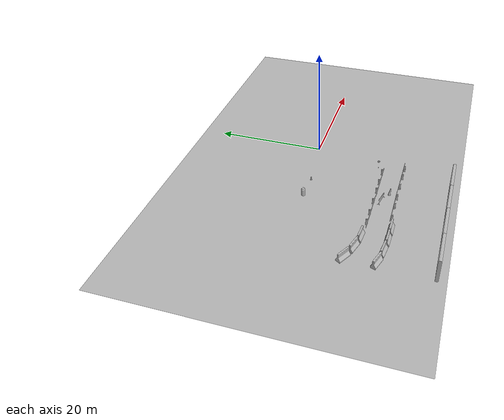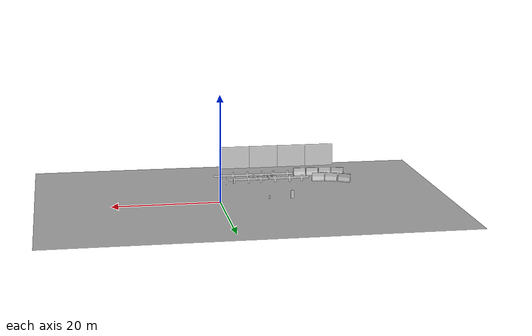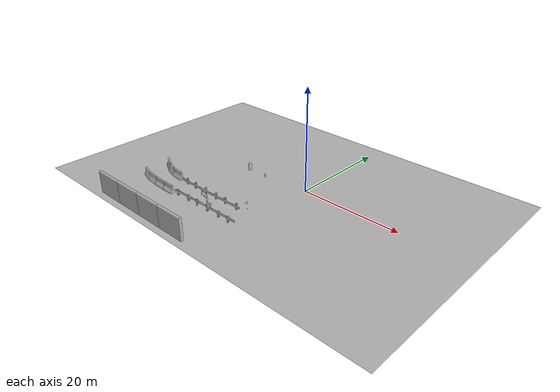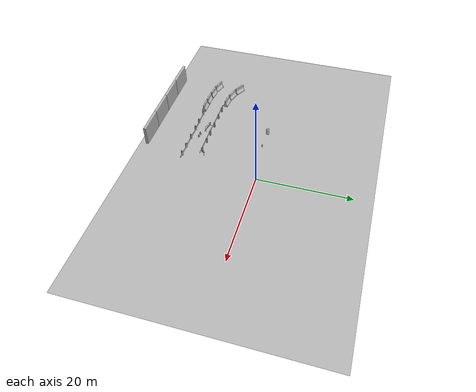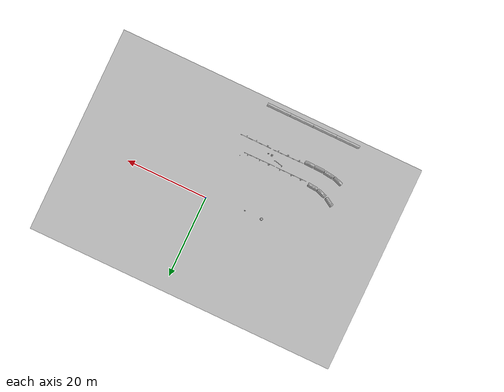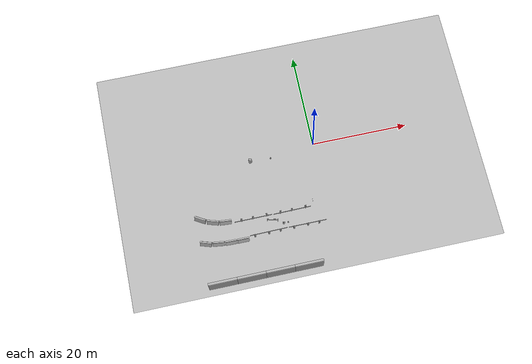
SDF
<sdf version="1.7">
 <world name="default">
  <model name="aws_robomaker_racetrack_CrashworthBucket_01_02">
   <frame name="aws_CrashworthBucket_01::__model__" attached_to="aws_CrashworthBucket_01::body">
    <pose relative_to="__model__">0 0 0 0 -0 0</pose>
   </frame>
   <link name="aws_CrashworthBucket_01::body">
    <pose relative_to="aws_CrashworthBucket_01::__model__">0 0 0 0 -0 0</pose>
    <inertial>
     <mass>5</mass>
     <inertia><ixx>1</ixx><ixy>0</ixy><ixz>0</ixz><iyy>1</iyy><iyz>0</iyz><izz>1</izz></inertia>
    </inertial>
    <visual name="visual">
     <geometry>
      <mesh>
       <uri>file://models/aws_robomaker_racetrack_CrashworthBucket_01/meshes/aws_CrashworthBucket_01_visual.DAE</uri>
      </mesh>
     </geometry>
     <material><shader type="pixel"><normal_map>__default__</normal_map></shader></material>
     <meta><layer>0</layer></meta>
    </visual>
    <collision name="collision_0">
     <geometry>
      <mesh>
       <uri>file://models/aws_robomaker_racetrack_CrashworthBucket_01/meshes/aws_CrashworthBucket_01_collision.DAE</uri>
       <scale>1 1 1</scale>
      </mesh>
     </geometry>
     <surface>
      <friction>
       <ode><mu>1</mu><mu2>1</mu2><fdir1>0 0 0</fdir1><slip1>0</slip1><slip2>0</slip2></ode>
       <torsional>
        <coefficient>1</coefficient>
        <patch_radius>0</patch_radius>
        <surface_radius>0</surface_radius>
        <use_patch_radius>1</use_patch_radius>
        <ode><slip>0</slip></ode>
       </torsional>
      </friction>
      <bounce><restitution_coefficient>0</restitution_coefficient><threshold>1e+06</threshold></bounce>
      <contact>
       <collide_without_contact>0</collide_without_contact>
       <collide_without_contact_bitmask>1</collide_without_contact_bitmask>
       <collide_bitmask>1</collide_bitmask>
       <ode>
        <soft_cfm>0</soft_cfm>
        <soft_erp>0.2</soft_erp>
        <kp>1e+13</kp>
        <kd>1</kd>
        <max_vel>0.01</max_vel>
        <min_depth>0</min_depth>
       </ode>
       <bullet>
        <split_impulse>1</split_impulse>
        <split_impulse_penetration_threshold>-0.01</split_impulse_penetration_threshold>
        <soft_cfm>0</soft_cfm>
        <soft_erp>0.2</soft_erp>
        <kp>1e+13</kp>
        <kd>1</kd>
       </bullet>
      </contact>
     </surface>
    </collision>
   </link>
   <static>1</static>
   <pose>-13.6708 -0.983538 0.054 0 -0 0</pose>
  </model>
  <model name="aws_robomaker_racetrack_Fence_01_04">
   <frame name="aws_Fence_01::__model__" attached_to="aws_Fence_01::body">
    <pose relative_to="__model__">0 0 0 0 -0 0</pose>
   </frame>
   <link name="aws_Fence_01::body">
    <pose relative_to="aws_Fence_01::__model__">0 0 0 0 -0 0</pose>
    <inertial>
     <mass>5</mass>
     <inertia><ixx>1</ixx><ixy>0</ixy><ixz>0</ixz><iyy>1</iyy><iyz>0</iyz><izz>1</izz></inertia>
    </inertial>
    <visual name="visual">
     <geometry>
      <mesh><uri>file://models/aws_robomaker_racetrack_Fence_01/meshes/aws_Fence_01_visual.DAE</uri></mesh>
     </geometry>
     <material><shader type="pixel"><normal_map>__default__</normal_map></shader></material>
     <meta><layer>0</layer></meta>
    </visual>
    <collision name="collision_0">
     <geometry>
      <mesh>
       <uri>file://models/aws_robomaker_racetrack_Fence_01/meshes/aws_Fence_01_collision.DAE</uri>
       <scale>1 1 1</scale>
      </mesh>
     </geometry>
     <surface>
      <friction>
       <ode><mu>1</mu><mu2>1</mu2><fdir1>0 0 0</fdir1><slip1>0</slip1><slip2>0</slip2></ode>
       <torsional>
        <coefficient>1</coefficient>
        <patch_radius>0</patch_radius>
        <surface_radius>0</surface_radius>
        <use_patch_radius>1</use_patch_radius>
        <ode><slip>0</slip></ode>
       </torsional>
      </friction>
      <bounce><restitution_coefficient>0</restitution_coefficient><threshold>1e+06</threshold></bounce>
      <contact>
       <collide_without_contact>0</collide_without_contact>
       <collide_without_contact_bitmask>1</collide_without_contact_bitmask>
       <collide_bitmask>1</collide_bitmask>
       <ode>
        <soft_cfm>0</soft_cfm>
        <soft_erp>0.2</soft_erp>
        <kp>1e+13</kp>
        <kd>1</kd>
        <max_vel>0.01</max_vel>
        <min_depth>0</min_depth>
       </ode>
       <bullet>
        <split_impulse>1</split_impulse>
        <split_impulse_penetration_threshold>-0.01</split_impulse_penetration_threshold>
        <soft_cfm>0</soft_cfm>
        <soft_erp>0.2</soft_erp>
        <kp>1e+13</kp>
        <kd>1</kd>
       </bullet>
      </contact>
     </surface>
    </collision>
   </link>
   <static>1</static>
   <pose>-12.9904 -16.8572 0.054 0 0 -1.55861</pose>
  </model>
  <model name="aws_robomaker_racetrack_Fence_01_05">
   <frame name="aws_Fence_01::__model__" attached_to="aws_Fence_01::body">
    <pose relative_to="__model__">0 0 0 0 -0 0</pose>
   </frame>
   <link name="aws_Fence_01::body">
    <pose relative_to="aws_Fence_01::__model__">0 0 0 0 -0 0</pose>
    <inertial>
     <mass>5</mass>
     <inertia><ixx>1</ixx><ixy>0</ixy><ixz>0</ixz><iyy>1</iyy><iyz>0</iyz><izz>1</izz></inertia>
    </inertial>
    <visual name="visual">
     <geometry>
      <mesh><uri>file://models/aws_robomaker_racetrack_Fence_01/meshes/aws_Fence_01_visual.DAE</uri></mesh>
     </geometry>
     <material><shader type="pixel"><normal_map>__default__</normal_map></shader></material>
     <meta><layer>0</layer></meta>
    </visual>
    <collision name="collision_0">
     <geometry>
      <mesh>
       <uri>file://models/aws_robomaker_racetrack_Fence_01/meshes/aws_Fence_01_collision.DAE</uri>
       <scale>1 1 1</scale>
      </mesh>
     </geometry>
     <surface>
      <friction>
       <ode><mu>1</mu><mu2>1</mu2><fdir1>0 0 0</fdir1><slip1>0</slip1><slip2>0</slip2></ode>
       <torsional>
        <coefficient>1</coefficient>
        <patch_radius>0</patch_radius>
        <surface_radius>0</surface_radius>
        <use_patch_radius>1</use_patch_radius>
        <ode><slip>0</slip></ode>
       </torsional>
      </friction>
      <bounce><restitution_coefficient>0</restitution_coefficient><threshold>1e+06</threshold></bounce>
      <contact>
       <collide_without_contact>0</collide_without_contact>
       <collide_without_contact_bitmask>1</collide_without_contact_bitmask>
       <collide_bitmask>1</collide_bitmask>
       <ode>
        <soft_cfm>0</soft_cfm>
        <soft_erp>0.2</soft_erp>
        <kp>1e+13</kp>
        <kd>1</kd>
        <max_vel>0.01</max_vel>
        <min_depth>0</min_depth>
       </ode>
       <bullet>
        <split_impulse>1</split_impulse>
        <split_impulse_penetration_threshold>-0.01</split_impulse_penetration_threshold>
        <soft_cfm>0</soft_cfm>
        <soft_erp>0.2</soft_erp>
        <kp>1e+13</kp>
        <kd>1</kd>
       </bullet>
      </contact>
     </surface>
    </collision>
   </link>
   <static>1</static>
   <pose>-4.88088 -16.8495 0.054 0 0 -1.57272</pose>
  </model>
  <model name="aws_robomaker_racetrack_Fence_01_08">
   <frame name="aws_Fence_01::__model__" attached_to="aws_Fence_01::body">
    <pose relative_to="__model__">0 0 0 0 -0 0</pose>
   </frame>
   <link name="aws_Fence_01::body">
    <pose relative_to="aws_Fence_01::__model__">0 0 0 0 -0 0</pose>
    <inertial>
     <mass>5</mass>
     <inertia><ixx>1</ixx><ixy>0</ixy><ixz>0</ixz><iyy>1</iyy><iyz>0</iyz><izz>1</izz></inertia>
    </inertial>
    <visual name="visual">
     <geometry>
      <mesh><uri>file://models/aws_robomaker_racetrack_Fence_01/meshes/aws_Fence_01_visual.DAE</uri></mesh>
     </geometry>
     <material><shader type="pixel"><normal_map>__default__</normal_map></shader></material>
     <meta><layer>0</layer></meta>
    </visual>
    <collision name="collision_0">
     <geometry>
      <mesh>
       <uri>file://models/aws_robomaker_racetrack_Fence_01/meshes/aws_Fence_01_collision.DAE</uri>
       <scale>1 1 1</scale>
      </mesh>
     </geometry>
     <surface>
      <friction>
       <ode><mu>1</mu><mu2>1</mu2><fdir1>0 0 0</fdir1><slip1>0</slip1><slip2>0</slip2></ode>
       <torsional>
        <coefficient>1</coefficient>
        <patch_radius>0</patch_radius>
        <surface_radius>0</surface_radius>
        <use_patch_radius>1</use_patch_radius>
        <ode><slip>0</slip></ode>
       </torsional>
      </friction>
      <bounce><restitution_coefficient>0</restitution_coefficient><threshold>1e+06</threshold></bounce>
      <contact>
       <collide_without_contact>0</collide_without_contact>
       <collide_without_contact_bitmask>1</collide_without_contact_bitmask>
       <collide_bitmask>1</collide_bitmask>
       <ode>
        <soft_cfm>0</soft_cfm>
        <soft_erp>0.2</soft_erp>
        <kp>1e+13</kp>
        <kd>1</kd>
        <max_vel>0.01</max_vel>
        <min_depth>0</min_depth>
       </ode>
       <bullet>
        <split_impulse>1</split_impulse>
        <split_impulse_penetration_threshold>-0.01</split_impulse_penetration_threshold>
        <soft_cfm>0</soft_cfm>
        <soft_erp>0.2</soft_erp>
        <kp>1e+13</kp>
        <kd>1</kd>
       </bullet>
      </contact>
     </surface>
    </collision>
   </link>
   <static>1</static>
   <pose>-15.529 -13.1346 0.054 0 -0 1.57158</pose>
  </model>
  <model name="aws_robomaker_racetrack_Fence_01_09">
   <frame name="aws_Fence_01::__model__" attached_to="aws_Fence_01::body">
    <pose relative_to="__model__">0 0 0 0 -0 0</pose>
   </frame>
   <link name="aws_Fence_01::body">
    <pose relative_to="aws_Fence_01::__model__">0 0 0 0 -0 0</pose>
    <inertial>
     <mass>5</mass>
     <inertia><ixx>1</ixx><ixy>0</ixy><ixz>0</ixz><iyy>1</iyy><iyz>0</iyz><izz>1</izz></inertia>
    </inertial>
    <visual name="visual">
     <geometry>
      <mesh><uri>file://models/aws_robomaker_racetrack_Fence_01/meshes/aws_Fence_01_visual.DAE</uri></mesh>
     </geometry>
     <material><shader type="pixel"><normal_map>__default__</normal_map></shader></material>
     <meta><layer>0</layer></meta>
    </visual>
    <collision name="collision_0">
     <geometry>
      <mesh>
       <uri>file://models/aws_robomaker_racetrack_Fence_01/meshes/aws_Fence_01_collision.DAE</uri>
       <scale>1 1 1</scale>
      </mesh>
     </geometry>
     <surface>
      <friction>
       <ode><mu>1</mu><mu2>1</mu2><fdir1>0 0 0</fdir1><slip1>0</slip1><slip2>0</slip2></ode>
       <torsional>
        <coefficient>1</coefficient>
        <patch_radius>0</patch_radius>
        <surface_radius>0</surface_radius>
        <use_patch_radius>1</use_patch_radius>
        <ode><slip>0</slip></ode>
       </torsional>
      </friction>
      <bounce><restitution_coefficient>0</restitution_coefficient><threshold>1e+06</threshold></bounce>
      <contact>
       <collide_without_contact>0</collide_without_contact>
       <collide_without_contact_bitmask>1</collide_without_contact_bitmask>
       <collide_bitmask>1</collide_bitmask>
       <ode>
        <soft_cfm>0</soft_cfm>
        <soft_erp>0.2</soft_erp>
        <kp>1e+13</kp>
        <kd>1</kd>
        <max_vel>0.01</max_vel>
        <min_depth>0</min_depth>
       </ode>
       <bullet>
        <split_impulse>1</split_impulse>
        <split_impulse_penetration_threshold>-0.01</split_impulse_penetration_threshold>
        <soft_cfm>0</soft_cfm>
        <soft_erp>0.2</soft_erp>
        <kp>1e+13</kp>
        <kd>1</kd>
       </bullet>
      </contact>
     </surface>
    </collision>
   </link>
   <static>1</static>
   <pose>-7.39105 -13.1346 0.054651 0 -0 1.5804</pose>
  </model>
  <model name="aws_robomaker_racetrack_Fence_02_04">
   <frame name="aws_Fence_02::__model__" attached_to="aws_Fence_02::body">
    <pose relative_to="__model__">0 0 0 0 -0 0</pose>
   </frame>
   <link name="aws_Fence_02::body">
    <pose relative_to="aws_Fence_02::__model__">0 0 0 0 -0 0</pose>
    <inertial>
     <mass>5</mass>
     <inertia><ixx>9.6</ixx><ixy>0</ixy><ixz>0</ixz><iyy>8.2</iyy><iyz>0</iyz><izz>2.1</izz></inertia>
    </inertial>
    <visual name="visual">
     <geometry>
      <mesh><uri>file://models/aws_robomaker_racetrack_Fence_02/meshes/aws_Fence_02_visual.DAE</uri></mesh>
     </geometry>
     <material><shader type="pixel"><normal_map>__default__</normal_map></shader></material>
     <meta><layer>0</layer></meta>
    </visual>
    <collision name="collision_0">
     <geometry>
      <mesh>
       <uri>file://models/aws_robomaker_racetrack_Fence_02/meshes/aws_Fence_02_collision.DAE</uri>
       <scale>1 1 1</scale>
      </mesh>
     </geometry>
     <surface>
      <friction>
       <ode><mu>1</mu><mu2>1</mu2><fdir1>0 0 0</fdir1><slip1>0</slip1><slip2>0</slip2></ode>
       <torsional>
        <coefficient>1</coefficient>
        <patch_radius>0</patch_radius>
        <surface_radius>0</surface_radius>
        <use_patch_radius>1</use_patch_radius>
        <ode><slip>0</slip></ode>
       </torsional>
      </friction>
      <bounce><restitution_coefficient>0</restitution_coefficient><threshold>1e+06</threshold></bounce>
      <contact>
       <collide_without_contact>0</collide_without_contact>
       <collide_without_contact_bitmask>1</collide_without_contact_bitmask>
       <collide_bitmask>1</collide_bitmask>
      </contact>
     </surface>
    </collision>
   </link>
   <static>1</static>
   <pose>-11.6951 -14.3074 0.054 0 0 -1.78988</pose>
  </model>
  <model name="aws_robomaker_racetrack_StonePier_01_00">
   <frame name="aws_StonePier_01::__model__" attached_to="aws_StonePier_01::body">
    <pose relative_to="__model__">0 0 0 0 -0 0</pose>
   </frame>
   <link name="aws_StonePier_01::body">
    <pose relative_to="aws_StonePier_01::__model__">0 0 0 0 -0 0</pose>
    <inertial>
     <mass>10</mass>
     <inertia><ixx>0</ixx><ixy>0</ixy><ixz>0</ixz><iyy>0</iyy><iyz>0</iyz><izz>0</izz></inertia>
    </inertial>
    <visual name="visual">
     <geometry>
      <mesh><uri>file://models/aws_robomaker_racetrack_StonePier_01/meshes/aws_StonePier_01_visual.DAE</uri></mesh>
     </geometry>
     <material><shader type="pixel"><normal_map>__default__</normal_map></shader></material>
     <meta><layer>0</layer></meta>
    </visual>
    <collision name="collision_0">
     <geometry>
      <mesh>
       <uri>file://models/aws_robomaker_racetrack_StonePier_01/meshes/aws_StonePier_01_collision.DAE</uri>
       <scale>1 1 1</scale>
      </mesh>
     </geometry>
     <surface>
      <friction>
       <ode><mu>1</mu><mu2>1</mu2><fdir1>0 0 0</fdir1><slip1>0</slip1><slip2>0</slip2></ode>
       <torsional>
        <coefficient>1</coefficient>
        <patch_radius>0</patch_radius>
        <surface_radius>0</surface_radius>
        <use_patch_radius>1</use_patch_radius>
        <ode><slip>0</slip></ode>
       </torsional>
      </friction>
      <bounce><restitution_coefficient>0</restitution_coefficient><threshold>1e+06</threshold></bounce>
      <contact>
       <collide_without_contact>0</collide_without_contact>
       <collide_without_contact_bitmask>1</collide_without_contact_bitmask>
       <collide_bitmask>1</collide_bitmask>
       <ode>
        <soft_cfm>0</soft_cfm>
        <soft_erp>0.2</soft_erp>
        <kp>1e+13</kp>
        <kd>1</kd>
        <max_vel>0.01</max_vel>
        <min_depth>0</min_depth>
       </ode>
       <bullet>
        <split_impulse>1</split_impulse>
        <split_impulse_penetration_threshold>-0.01</split_impulse_penetration_threshold>
        <soft_cfm>0</soft_cfm>
        <soft_erp>0.2</soft_erp>
        <kp>1e+13</kp>
        <kd>1</kd>
       </bullet>
      </contact>
     </surface>
    </collision>
   </link>
   <static>1</static>
   <pose>-21.1732 -12.7799 0.054 0 0 -0.086667</pose>
  </model>
  <model name="aws_robomaker_racetrack_StonePier_01_01">
   <frame name="aws_StonePier_01::__model__" attached_to="aws_StonePier_01::body">
    <pose relative_to="__model__">0 0 0 0 -0 0</pose>
   </frame>
   <link name="aws_StonePier_01::body">
    <pose relative_to="aws_StonePier_01::__model__">0 0 0 0 -0 0</pose>
    <inertial>
     <mass>10</mass>
     <inertia><ixx>0</ixx><ixy>0</ixy><ixz>0</ixz><iyy>0</iyy><iyz>0</iyz><izz>0</izz></inertia>
    </inertial>
    <visual name="visual">
     <geometry>
      <mesh><uri>file://models/aws_robomaker_racetrack_StonePier_01/meshes/aws_StonePier_01_visual.DAE</uri></mesh>
     </geometry>
     <material><shader type="pixel"><normal_map>__default__</normal_map></shader></material>
     <meta><layer>0</layer></meta>
    </visual>
    <collision name="collision_0">
     <geometry>
      <mesh>
       <uri>file://models/aws_robomaker_racetrack_StonePier_01/meshes/aws_StonePier_01_collision.DAE</uri>
       <scale>1 1 1</scale>
      </mesh>
     </geometry>
     <surface>
      <friction>
       <ode><mu>1</mu><mu2>1</mu2><fdir1>0 0 0</fdir1><slip1>0</slip1><slip2>0</slip2></ode>
       <torsional>
        <coefficient>1</coefficient>
        <patch_radius>0</patch_radius>
        <surface_radius>0</surface_radius>
        <use_patch_radius>1</use_patch_radius>
        <ode><slip>0</slip></ode>
       </torsional>
      </friction>
      <bounce><restitution_coefficient>0</restitution_coefficient><threshold>1e+06</threshold></bounce>
      <contact>
       <collide_without_contact>0</collide_without_contact>
       <collide_without_contact_bitmask>1</collide_without_contact_bitmask>
       <collide_bitmask>1</collide_bitmask>
       <ode>
        <soft_cfm>0</soft_cfm>
        <soft_erp>0.2</soft_erp>
        <kp>1e+13</kp>
        <kd>1</kd>
        <max_vel>0.01</max_vel>
        <min_depth>0</min_depth>
       </ode>
       <bullet>
        <split_impulse>1</split_impulse>
        <split_impulse_penetration_threshold>-0.01</split_impulse_penetration_threshold>
        <soft_cfm>0</soft_cfm>
        <soft_erp>0.2</soft_erp>
        <kp>1e+13</kp>
        <kd>1</kd>
       </bullet>
      </contact>
     </surface>
    </collision>
   </link>
   <static>1</static>
   <pose>-23.6727 -12.2854 0.054 0 0 -0.301631</pose>
  </model>
  <model name="aws_robomaker_racetrack_StonePier_01_40">
   <frame name="aws_StonePier_01::__model__" attached_to="aws_StonePier_01::body">
    <pose relative_to="__model__">0 0 0 0 -0 0</pose>
   </frame>
   <link name="aws_StonePier_01::body">
    <pose relative_to="aws_StonePier_01::__model__">0 0 0 0 -0 0</pose>
    <inertial>
     <mass>10</mass>
     <inertia><ixx>0</ixx><ixy>0</ixy><ixz>0</ixz><iyy>0</iyy><iyz>0</iyz><izz>0</izz></inertia>
    </inertial>
    <visual name="visual">
     <geometry>
      <mesh><uri>file://models/aws_robomaker_racetrack_StonePier_01/meshes/aws_StonePier_01_visual.DAE</uri></mesh>
     </geometry>
     <material><shader type="pixel"><normal_map>__default__</normal_map></shader></material>
     <meta><layer>0</layer></meta>
    </visual>
    <collision name="collision_0">
     <geometry>
      <mesh>
       <uri>file://models/aws_robomaker_racetrack_StonePier_01/meshes/aws_StonePier_01_collision.DAE</uri>
       <scale>1 1 1</scale>
      </mesh>
     </geometry>
     <surface>
      <friction>
       <ode><mu>1</mu><mu2>1</mu2><fdir1>0 0 0</fdir1><slip1>0</slip1><slip2>0</slip2></ode>
       <torsional>
        <coefficient>1</coefficient>
        <patch_radius>0</patch_radius>
        <surface_radius>0</surface_radius>
        <use_patch_radius>1</use_patch_radius>
        <ode><slip>0</slip></ode>
       </torsional>
      </friction>
      <bounce><restitution_coefficient>0</restitution_coefficient><threshold>1e+06</threshold></bounce>
      <contact>
       <collide_without_contact>0</collide_without_contact>
       <collide_without_contact_bitmask>1</collide_without_contact_bitmask>
       <collide_bitmask>1</collide_bitmask>
       <ode>
        <soft_cfm>0</soft_cfm>
        <soft_erp>0.2</soft_erp>
        <kp>1e+13</kp>
        <kd>1</kd>
        <max_vel>0.01</max_vel>
        <min_depth>0</min_depth>
       </ode>
       <bullet>
        <split_impulse>1</split_impulse>
        <split_impulse_penetration_threshold>-0.01</split_impulse_penetration_threshold>
        <soft_cfm>0</soft_cfm>
        <soft_erp>0.2</soft_erp>
        <kp>1e+13</kp>
        <kd>1</kd>
       </bullet>
      </contact>
     </surface>
    </collision>
   </link>
   <static>1</static>
   <pose>-18.3212 -17.1986 0.054 0 0 -0.000165</pose>
  </model>
  <model name="aws_robomaker_racetrack_StonePier_01_41">
   <frame name="aws_StonePier_01::__model__" attached_to="aws_StonePier_01::body">
    <pose relative_to="__model__">0 0 0 0 -0 0</pose>
   </frame>
   <link name="aws_StonePier_01::body">
    <pose relative_to="aws_StonePier_01::__model__">0 0 0 0 -0 0</pose>
    <inertial>
     <mass>10</mass>
     <inertia><ixx>0</ixx><ixy>0</ixy><ixz>0</ixz><iyy>0</iyy><iyz>0</iyz><izz>0</izz></inertia>
    </inertial>
    <visual name="visual">
     <geometry>
      <mesh><uri>file://models/aws_robomaker_racetrack_StonePier_01/meshes/aws_StonePier_01_visual.DAE</uri></mesh>
     </geometry>
     <material><shader type="pixel"><normal_map>__default__</normal_map></shader></material>
     <meta><layer>0</layer></meta>
    </visual>
    <collision name="collision_0">
     <geometry>
      <mesh>
       <uri>file://models/aws_robomaker_racetrack_StonePier_01/meshes/aws_StonePier_01_collision.DAE</uri>
       <scale>1 1 1</scale>
      </mesh>
     </geometry>
     <surface>
      <friction>
       <ode><mu>1</mu><mu2>1</mu2><fdir1>0 0 0</fdir1><slip1>0</slip1><slip2>0</slip2></ode>
       <torsional>
        <coefficient>1</coefficient>
        <patch_radius>0</patch_radius>
        <surface_radius>0</surface_radius>
        <use_patch_radius>1</use_patch_radius>
        <ode><slip>0</slip></ode>
       </torsional>
      </friction>
      <bounce><restitution_coefficient>0</restitution_coefficient><threshold>1e+06</threshold></bounce>
      <contact>
       <collide_without_contact>0</collide_without_contact>
       <collide_without_contact_bitmask>1</collide_without_contact_bitmask>
       <collide_bitmask>1</collide_bitmask>
       <ode>
        <soft_cfm>0</soft_cfm>
        <soft_erp>0.2</soft_erp>
        <kp>1e+13</kp>
        <kd>1</kd>
        <max_vel>0.01</max_vel>
        <min_depth>0</min_depth>
       </ode>
       <bullet>
        <split_impulse>1</split_impulse>
        <split_impulse_penetration_threshold>-0.01</split_impulse_penetration_threshold>
        <soft_cfm>0</soft_cfm>
        <soft_erp>0.2</soft_erp>
        <kp>1e+13</kp>
        <kd>1</kd>
       </bullet>
      </contact>
     </surface>
    </collision>
   </link>
   <static>1</static>
   <pose>-26.1157 -11.2238 0.054 0 0 -0.528829</pose>
  </model>
  <model name="aws_robomaker_racetrack_StonePier_01_68">
   <frame name="aws_StonePier_01::__model__" attached_to="aws_StonePier_01::body">
    <pose relative_to="__model__">0 0 0 0 -0 0</pose>
   </frame>
   <link name="aws_StonePier_01::body">
    <pose relative_to="aws_StonePier_01::__model__">0 0 0 0 -0 0</pose>
    <inertial>
     <mass>10</mass>
     <inertia><ixx>0</ixx><ixy>0</ixy><ixz>0</ixz><iyy>0</iyy><iyz>0</iyz><izz>0</izz></inertia>
    </inertial>
    <visual name="visual">
     <geometry>
      <mesh><uri>file://models/aws_robomaker_racetrack_StonePier_01/meshes/aws_StonePier_01_visual.DAE</uri></mesh>
     </geometry>
     <material><shader type="pixel"><normal_map>__default__</normal_map></shader></material>
     <meta><layer>0</layer></meta>
    </visual>
    <collision name="collision_0">
     <geometry>
      <mesh>
       <uri>file://models/aws_robomaker_racetrack_StonePier_01/meshes/aws_StonePier_01_collision.DAE</uri>
       <scale>1 1 1</scale>
      </mesh>
     </geometry>
     <surface>
      <friction>
       <ode><mu>1</mu><mu2>1</mu2><fdir1>0 0 0</fdir1><slip1>0</slip1><slip2>0</slip2></ode>
       <torsional>
        <coefficient>1</coefficient>
        <patch_radius>0</patch_radius>
        <surface_radius>0</surface_radius>
        <use_patch_radius>1</use_patch_radius>
        <ode><slip>0</slip></ode>
       </torsional>
      </friction>
      <bounce><restitution_coefficient>0</restitution_coefficient><threshold>1e+06</threshold></bounce>
      <contact>
       <collide_without_contact>0</collide_without_contact>
       <collide_without_contact_bitmask>1</collide_without_contact_bitmask>
       <collide_bitmask>1</collide_bitmask>
       <ode>
        <soft_cfm>0</soft_cfm>
        <soft_erp>0.2</soft_erp>
        <kp>1e+13</kp>
        <kd>1</kd>
        <max_vel>0.01</max_vel>
        <min_depth>0</min_depth>
       </ode>
       <bullet>
        <split_impulse>1</split_impulse>
        <split_impulse_penetration_threshold>-0.01</split_impulse_penetration_threshold>
        <soft_cfm>0</soft_cfm>
        <soft_erp>0.2</soft_erp>
        <kp>1e+13</kp>
        <kd>1</kd>
       </bullet>
      </contact>
     </surface>
    </collision>
   </link>
   <static>1</static>
   <pose>-20.8526 -17.1365 0.054 -0 0.00036 -0.016586</pose>
  </model>
  <model name="aws_robomaker_racetrack_StonePier_01_69">
   <frame name="aws_StonePier_01::__model__" attached_to="aws_StonePier_01::body">
    <pose relative_to="__model__">0 0 0 0 -0 0</pose>
   </frame>
   <link name="aws_StonePier_01::body">
    <pose relative_to="aws_StonePier_01::__model__">0 0 0 0 -0 0</pose>
    <inertial>
     <mass>10</mass>
     <inertia><ixx>0</ixx><ixy>0</ixy><ixz>0</ixz><iyy>0</iyy><iyz>0</iyz><izz>0</izz></inertia>
    </inertial>
    <visual name="visual">
     <geometry>
      <mesh><uri>file://models/aws_robomaker_racetrack_StonePier_01/meshes/aws_StonePier_01_visual.DAE</uri></mesh>
     </geometry>
     <material><shader type="pixel"><normal_map>__default__</normal_map></shader></material>
     <meta><layer>0</layer></meta>
    </visual>
    <collision name="collision_0">
     <geometry>
      <mesh>
       <uri>file://models/aws_robomaker_racetrack_StonePier_01/meshes/aws_StonePier_01_collision.DAE</uri>
       <scale>1 1 1</scale>
      </mesh>
     </geometry>
     <surface>
      <friction>
       <ode><mu>1</mu><mu2>1</mu2><fdir1>0 0 0</fdir1><slip1>0</slip1><slip2>0</slip2></ode>
       <torsional>
        <coefficient>1</coefficient>
        <patch_radius>0</patch_radius>
        <surface_radius>0</surface_radius>
        <use_patch_radius>1</use_patch_radius>
        <ode><slip>0</slip></ode>
       </torsional>
      </friction>
      <bounce><restitution_coefficient>0</restitution_coefficient><threshold>1e+06</threshold></bounce>
      <contact>
       <collide_without_contact>0</collide_without_contact>
       <collide_without_contact_bitmask>1</collide_without_contact_bitmask>
       <collide_bitmask>1</collide_bitmask>
       <ode>
        <soft_cfm>0</soft_cfm>
        <soft_erp>0.2</soft_erp>
        <kp>1e+13</kp>
        <kd>1</kd>
        <max_vel>0.01</max_vel>
        <min_depth>0</min_depth>
       </ode>
       <bullet>
        <split_impulse>1</split_impulse>
        <split_impulse_penetration_threshold>-0.01</split_impulse_penetration_threshold>
        <soft_cfm>0</soft_cfm>
        <soft_erp>0.2</soft_erp>
        <kp>1e+13</kp>
        <kd>1</kd>
       </bullet>
      </contact>
     </surface>
    </collision>
   </link>
   <static>1</static>
   <pose>-23.3756 -16.9024 0.054 0 0 -0.119704</pose>
  </model>
  <model name="aws_robomaker_racetrack_StonePier_01_70">
   <frame name="aws_StonePier_01::__model__" attached_to="aws_StonePier_01::body">
    <pose relative_to="__model__">0 0 0 0 -0 0</pose>
   </frame>
   <link name="aws_StonePier_01::body">
    <pose relative_to="aws_StonePier_01::__model__">0 0 0 0 -0 0</pose>
    <inertial>
     <mass>10</mass>
     <inertia><ixx>0</ixx><ixy>0</ixy><ixz>0</ixz><iyy>0</iyy><iyz>0</iyz><izz>0</izz></inertia>
    </inertial>
    <visual name="visual">
     <geometry>
      <mesh><uri>file://models/aws_robomaker_racetrack_StonePier_01/meshes/aws_StonePier_01_visual.DAE</uri></mesh>
     </geometry>
     <material><shader type="pixel"><normal_map>__default__</normal_map></shader></material>
     <meta><layer>0</layer></meta>
    </visual>
    <collision name="collision_0">
     <geometry>
      <mesh>
       <uri>file://models/aws_robomaker_racetrack_StonePier_01/meshes/aws_StonePier_01_collision.DAE</uri>
       <scale>1 1 1</scale>
      </mesh>
     </geometry>
     <surface>
      <friction>
       <ode><mu>1</mu><mu2>1</mu2><fdir1>0 0 0</fdir1><slip1>0</slip1><slip2>0</slip2></ode>
       <torsional>
        <coefficient>1</coefficient>
        <patch_radius>0</patch_radius>
        <surface_radius>0</surface_radius>
        <use_patch_radius>1</use_patch_radius>
        <ode><slip>0</slip></ode>
       </torsional>
      </friction>
      <bounce><restitution_coefficient>0</restitution_coefficient><threshold>1e+06</threshold></bounce>
      <contact>
       <collide_without_contact>0</collide_without_contact>
       <collide_without_contact_bitmask>1</collide_without_contact_bitmask>
       <collide_bitmask>1</collide_bitmask>
       <ode>
        <soft_cfm>0</soft_cfm>
        <soft_erp>0.2</soft_erp>
        <kp>1e+13</kp>
        <kd>1</kd>
        <max_vel>0.01</max_vel>
        <min_depth>0</min_depth>
       </ode>
       <bullet>
        <split_impulse>1</split_impulse>
        <split_impulse_penetration_threshold>-0.01</split_impulse_penetration_threshold>
        <soft_cfm>0</soft_cfm>
        <soft_erp>0.2</soft_erp>
        <kp>1e+13</kp>
        <kd>1</kd>
       </bullet>
      </contact>
     </surface>
    </collision>
   </link>
   <static>1</static>
   <pose>-25.8909 -16.4126 0.054 0 0 -0.32217</pose>
  </model>
  <model name="aws_robomaker_racetrack_StopSign_01_00">
   <frame name="aws_StopSign_01::__model__" attached_to="aws_StopSign_01::body">
    <pose relative_to="__model__">0 0 0 0 -0 0</pose>
   </frame>
   <link name="aws_StopSign_01::body">
    <pose relative_to="aws_StopSign_01::__model__">0 0 0 0 -0 0</pose>
    <inertial>
     <mass>2</mass>
     <inertia><ixx>1</ixx><ixy>0</ixy><ixz>0</ixz><iyy>1</iyy><iyz>0</iyz><izz>1</izz></inertia>
    </inertial>
    <visual name="visual">
     <geometry>
      <mesh><uri>file://models/aws_robomaker_racetrack_StopSign_01/meshes/aws_StopSign_01_visual.DAE</uri></mesh>
     </geometry>
     <material><shader type="pixel"><normal_map>__default__</normal_map></shader></material>
     <meta><layer>0</layer></meta>
    </visual>
    <collision name="collision_0">
     <geometry>
      <mesh>
       <uri>file://models/aws_robomaker_racetrack_StopSign_01/meshes/aws_StopSign_01_collision.DAE</uri>
       <scale>1 1 1</scale>
      </mesh>
     </geometry>
     <surface>
      <friction>
       <ode><mu>1</mu><mu2>1</mu2><fdir1>0 0 0</fdir1><slip1>0</slip1><slip2>0</slip2></ode>
       <torsional>
        <coefficient>1</coefficient>
        <patch_radius>0</patch_radius>
        <surface_radius>0</surface_radius>
        <use_patch_radius>1</use_patch_radius>
        <ode><slip>0</slip></ode>
       </torsional>
      </friction>
      <bounce><restitution_coefficient>0</restitution_coefficient><threshold>1e+06</threshold></bounce>
      <contact>
       <collide_without_contact>0</collide_without_contact>
       <collide_without_contact_bitmask>1</collide_without_contact_bitmask>
       <collide_bitmask>1</collide_bitmask>
       <ode>
        <soft_cfm>0</soft_cfm>
        <soft_erp>0.2</soft_erp>
        <kp>1e+13</kp>
        <kd>1</kd>
        <max_vel>0.01</max_vel>
        <min_depth>0</min_depth>
       </ode>
       <bullet>
        <split_impulse>1</split_impulse>
        <split_impulse_penetration_threshold>-0.01</split_impulse_penetration_threshold>
        <soft_cfm>0</soft_cfm>
        <soft_erp>0.2</soft_erp>
        <kp>1e+13</kp>
        <kd>1</kd>
       </bullet>
      </contact>
     </surface>
    </collision>
   </link>
   <static>1</static>
   <pose>-2.7487 -12.1054 0.000775 0.075944 0.005053 -1.56731</pose>
  </model>
  <model name="aws_robomaker_racetrack_TrafficCone_01_00">
   <frame name="aws_TrafficCone_01::__model__" attached_to="aws_TrafficCone_01::body">
    <pose relative_to="__model__">0 0 0 0 -0 0</pose>
   </frame>
   <link name="aws_TrafficCone_01::body">
    <pose relative_to="aws_TrafficCone_01::__model__">0 0 0 0 -0 0</pose>
    <inertial>
     <mass>0.5</mass>
     <inertia><ixx>1</ixx><ixy>0</ixy><ixz>0</ixz><iyy>1</iyy><iyz>0</iyz><izz>1</izz></inertia>
    </inertial>
    <visual name="visual">
     <geometry>
      <mesh>
       <uri>file://models/aws_robomaker_racetrack_TrafficCone_01/meshes/aws_TrafficCone_01_visual.DAE</uri>
      </mesh>
     </geometry>
     <material><shader type="pixel"><normal_map>__default__</normal_map></shader></material>
     <meta><layer>0</layer></meta>
    </visual>
    <collision name="collision_0">
     <geometry>
      <mesh>
       <uri>file://models/aws_robomaker_racetrack_TrafficCone_01/meshes/aws_TrafficCone_01_coliision.DAE</uri>
       <scale>1 1 1</scale>
      </mesh>
     </geometry>
     <surface>
      <friction>
       <ode><mu>1</mu><mu2>1</mu2><fdir1>0 0 0</fdir1><slip1>0</slip1><slip2>0</slip2></ode>
       <torsional>
        <coefficient>1</coefficient>
        <patch_radius>0</patch_radius>
        <surface_radius>0</surface_radius>
        <use_patch_radius>1</use_patch_radius>
        <ode><slip>0</slip></ode>
       </torsional>
      </friction>
      <bounce><restitution_coefficient>0</restitution_coefficient><threshold>1e+06</threshold></bounce>
      <contact>
       <collide_without_contact>0</collide_without_contact>
       <collide_without_contact_bitmask>1</collide_without_contact_bitmask>
       <collide_bitmask>1</collide_bitmask>
       <ode>
        <soft_cfm>0</soft_cfm>
        <soft_erp>0.2</soft_erp>
        <kp>1e+13</kp>
        <kd>1</kd>
        <max_vel>0.01</max_vel>
        <min_depth>0</min_depth>
       </ode>
       <bullet>
        <split_impulse>1</split_impulse>
        <split_impulse_penetration_threshold>-0.01</split_impulse_penetration_threshold>
        <soft_cfm>0</soft_cfm>
        <soft_erp>0.2</soft_erp>
        <kp>1e+13</kp>
        <kd>1</kd>
       </bullet>
      </contact>
     </surface>
    </collision>
   </link>
   <static>1</static>
   <pose>-9.37917 -1.12327 0 0 -0 0</pose>
  </model>
  <model name="aws_robomaker_racetrack_TrafficCone_01_03">
   <frame name="aws_TrafficCone_01::__model__" attached_to="aws_TrafficCone_01::body">
    <pose relative_to="__model__">0 0 0 0 -0 0</pose>
   </frame>
   <link name="aws_TrafficCone_01::body">
    <pose relative_to="aws_TrafficCone_01::__model__">0 0 0 0 -0 0</pose>
    <inertial>
     <mass>0.5</mass>
     <inertia><ixx>1</ixx><ixy>0</ixy><ixz>0</ixz><iyy>1</iyy><iyz>0</iyz><izz>1</izz></inertia>
    </inertial>
    <visual name="visual">
     <geometry>
      <mesh>
       <uri>file://models/aws_robomaker_racetrack_TrafficCone_01/meshes/aws_TrafficCone_01_visual.DAE</uri>
      </mesh>
     </geometry>
     <material><shader type="pixel"><normal_map>__default__</normal_map></shader></material>
     <meta><layer>0</layer></meta>
    </visual>
    <collision name="collision_0">
     <geometry>
      <mesh>
       <uri>file://models/aws_robomaker_racetrack_TrafficCone_01/meshes/aws_TrafficCone_01_coliision.DAE</uri>
       <scale>1 1 1</scale>
      </mesh>
     </geometry>
     <surface>
      <friction>
       <ode><mu>1</mu><mu2>1</mu2><fdir1>0 0 0</fdir1><slip1>0</slip1><slip2>0</slip2></ode>
       <torsional>
        <coefficient>1</coefficient>
        <patch_radius>0</patch_radius>
        <surface_radius>0</surface_radius>
        <use_patch_radius>1</use_patch_radius>
        <ode><slip>0</slip></ode>
       </torsional>
      </friction>
      <bounce><restitution_coefficient>0</restitution_coefficient><threshold>1e+06</threshold></bounce>
      <contact>
       <collide_without_contact>0</collide_without_contact>
       <collide_without_contact_bitmask>1</collide_without_contact_bitmask>
       <collide_bitmask>1</collide_bitmask>
       <ode>
        <soft_cfm>0</soft_cfm>
        <soft_erp>0.2</soft_erp>
        <kp>1e+13</kp>
        <kd>1</kd>
        <max_vel>0.01</max_vel>
        <min_depth>0</min_depth>
       </ode>
       <bullet>
        <split_impulse>1</split_impulse>
        <split_impulse_penetration_threshold>-0.01</split_impulse_penetration_threshold>
        <soft_cfm>0</soft_cfm>
        <soft_erp>0.2</soft_erp>
        <kp>1e+13</kp>
        <kd>1</kd>
       </bullet>
      </contact>
     </surface>
    </collision>
   </link>
   <static>1</static>
   <pose>-8.67264 -15.416 0 0 -0 0</pose>
  </model>
  <model name="aws_robomaker_racetrack_TrafficCone_01_10">
   <frame name="aws_TrafficCone_01::__model__" attached_to="aws_TrafficCone_01::body">
    <pose relative_to="__model__">0 0 0 0 -0 0</pose>
   </frame>
   <link name="aws_TrafficCone_01::body">
    <pose relative_to="aws_TrafficCone_01::__model__">0 0 0 0 -0 0</pose>
    <inertial>
     <mass>0.5</mass>
     <inertia><ixx>1</ixx><ixy>0</ixy><ixz>0</ixz><iyy>1</iyy><iyz>0</iyz><izz>1</izz></inertia>
    </inertial>
    <visual name="visual">
     <geometry>
      <mesh>
       <uri>file://models/aws_robomaker_racetrack_TrafficCone_01/meshes/aws_TrafficCone_01_visual.DAE</uri>
      </mesh>
     </geometry>
     <material><shader type="pixel"><normal_map>__default__</normal_map></shader></material>
     <meta><layer>0</layer></meta>
    </visual>
    <collision name="collision_0">
     <geometry>
      <mesh>
       <uri>file://models/aws_robomaker_racetrack_TrafficCone_01/meshes/aws_TrafficCone_01_coliision.DAE</uri>
       <scale>1 1 1</scale>
      </mesh>
     </geometry>
     <surface>
      <friction>
       <ode><mu>1</mu><mu2>1</mu2><fdir1>0 0 0</fdir1><slip1>0</slip1><slip2>0</slip2></ode>
       <torsional>
        <coefficient>1</coefficient>
        <patch_radius>0</patch_radius>
        <surface_radius>0</surface_radius>
        <use_patch_radius>1</use_patch_radius>
        <ode><slip>0</slip></ode>
       </torsional>
      </friction>
      <bounce><restitution_coefficient>0</restitution_coefficient><threshold>1e+06</threshold></bounce>
      <contact>
       <collide_without_contact>0</collide_without_contact>
       <collide_without_contact_bitmask>1</collide_without_contact_bitmask>
       <collide_bitmask>1</collide_bitmask>
       <ode>
        <soft_cfm>0</soft_cfm>
        <soft_erp>0.2</soft_erp>
        <kp>1e+13</kp>
        <kd>1</kd>
        <max_vel>0.01</max_vel>
        <min_depth>0</min_depth>
       </ode>
       <bullet>
        <split_impulse>1</split_impulse>
        <split_impulse_penetration_threshold>-0.01</split_impulse_penetration_threshold>
        <soft_cfm>0</soft_cfm>
        <soft_erp>0.2</soft_erp>
        <kp>1e+13</kp>
        <kd>1</kd>
       </bullet>
      </contact>
     </surface>
    </collision>
   </link>
   <static>1</static>
   <pose>-9.56866 -15.3768 0.054 0 -0 0</pose>
  </model>
  <model name="aws_robomaker_racetrack_Ground_01_00">
   <frame name="aws_Ground_01::__model__" attached_to="aws_Ground_01::body">
    <pose relative_to="__model__">0 0 0 0 -0 0</pose>
   </frame>
   <link name="aws_Ground_01::body">
    <pose relative_to="aws_Ground_01::__model__">0 0 0 0 -0 0</pose>
    <inertial>
     <mass>10000</mass>
     <inertia><ixx>0</ixx><ixy>0</ixy><ixz>0</ixz><iyy>0</iyy><iyz>0</iyz><izz>0</izz></inertia>
    </inertial>
    <visual name="visual">
     <geometry>
      <mesh>
       <uri>file://models/aws_robomaker_racetrack_Ground_01/meshes/aws_Ground_01_visual.DAE</uri>
       <scale>0.09 0.06 0.2</scale>
      </mesh>
     </geometry>
     <material><shader type="pixel"><normal_map>__default__</normal_map></shader></material>
     <meta><layer>0</layer></meta>
    </visual>
    <collision name="collision_0">
     <geometry>
      <mesh>
       <uri>file://models/aws_robomaker_racetrack_Ground_01/meshes/aws_Ground_01_collision.DAE</uri>
       <scale>0.2 0.2 0.2</scale>
      </mesh>
     </geometry>
     <surface>
      <friction>
       <ode><mu>1</mu><mu2>1</mu2><fdir1>0 0 0</fdir1><slip1>0</slip1><slip2>0</slip2></ode>
       <torsional>
        <coefficient>1</coefficient>
        <patch_radius>0</patch_radius>
        <surface_radius>0</surface_radius>
        <use_patch_radius>1</use_patch_radius>
        <ode><slip>0</slip></ode>
       </torsional>
      </friction>
      <bounce><restitution_coefficient>0</restitution_coefficient><threshold>1e+06</threshold></bounce>
      <contact>
       <collide_without_contact>0</collide_without_contact>
       <collide_without_contact_bitmask>1</collide_without_contact_bitmask>
       <collide_bitmask>65535</collide_bitmask>
       <ode>
        <soft_cfm>0</soft_cfm>
        <soft_erp>0.2</soft_erp>
        <kp>1e+13</kp>
        <kd>1</kd>
        <max_vel>0.01</max_vel>
        <min_depth>0</min_depth>
       </ode>
       <bullet>
        <split_impulse>1</split_impulse>
        <split_impulse_penetration_threshold>-0.01</split_impulse_penetration_threshold>
        <soft_cfm>0</soft_cfm>
        <soft_erp>0.2</soft_erp>
        <kp>1e+13</kp>
        <kd>1</kd>
       </bullet>
      </contact>
     </surface>
    </collision>
   </link>
   <static>1</static>
   <pose>-4.3097 -1.62043 0.05 0 -0 0</pose>
  </model>
  <model name="aws_robomaker_racetrack_Wall_01_11">
   <frame name="aws_Wall_01::__model__" attached_to="aws_Wall_01::body">
    <pose relative_to="__model__">0 0 0 0 -0 0</pose>
   </frame>
   <link name="aws_Wall_01::body">
    <pose relative_to="aws_Wall_01::__model__">0 0 0 0 -0 0</pose>
    <inertial>
     <mass>500</mass>
     <inertia><ixx>1</ixx><ixy>0</ixy><ixz>0</ixz><iyy>1</iyy><iyz>0</iyz><izz>1</izz></inertia>
    </inertial>
    <visual name="visual">
     <geometry>
      <mesh>
       <uri>file://models/aws_robomaker_racetrack_Wall_01/meshes/aws_Wall_01_visual.DAE</uri>
       <scale>2.59853 2.59853 2.59853</scale>
      </mesh>
     </geometry>
     <material><shader type="pixel"><normal_map>__default__</normal_map></shader></material>
     <meta><layer>1</layer></meta>
    </visual>
    <collision name="collision_0">
     <geometry>
      <mesh>
       <uri>file://models/aws_robomaker_racetrack_Wall_01/meshes/aws_Wall_01_collision.DAE</uri>
       <scale>2.59853 2.59853 2.59853</scale>
      </mesh>
     </geometry>
     <surface>
      <friction>
       <ode><mu>1</mu><mu2>1</mu2><fdir1>0 0 0</fdir1><slip1>0</slip1><slip2>0</slip2></ode>
       <torsional>
        <coefficient>1</coefficient>
        <patch_radius>0</patch_radius>
        <surface_radius>0</surface_radius>
        <use_patch_radius>1</use_patch_radius>
        <ode><slip>0</slip></ode>
       </torsional>
      </friction>
      <bounce><restitution_coefficient>0</restitution_coefficient><threshold>1e+06</threshold></bounce>
      <contact>
       <collide_without_contact>0</collide_without_contact>
       <collide_without_contact_bitmask>1</collide_without_contact_bitmask>
       <collide_bitmask>1</collide_bitmask>
       <ode>
        <soft_cfm>0</soft_cfm>
        <soft_erp>0.2</soft_erp>
        <kp>1e+13</kp>
        <kd>1</kd>
        <max_vel>0.01</max_vel>
        <min_depth>0</min_depth>
       </ode>
       <bullet>
        <split_impulse>1</split_impulse>
        <split_impulse_penetration_threshold>-0.01</split_impulse_penetration_threshold>
        <soft_cfm>0</soft_cfm>
        <soft_erp>0.2</soft_erp>
        <kp>1e+13</kp>
        <kd>1</kd>
       </bullet>
      </contact>
     </surface>
    </collision>
   </link>
   <static>1</static>
   <pose>-23.9919 -25.5182 0 0 -0 0</pose>
  </model>
  <model name="aws_robomaker_racetrack_Wall_01_12">
   <frame name="aws_Wall_01::__model__" attached_to="aws_Wall_01::body">
    <pose relative_to="__model__">0 0 0 0 -0 0</pose>
   </frame>
   <link name="aws_Wall_01::body">
    <pose relative_to="aws_Wall_01::__model__">0 0 0 0 -0 0</pose>
    <inertial>
     <mass>500</mass>
     <inertia><ixx>1</ixx><ixy>0</ixy><ixz>0</ixz><iyy>1</iyy><iyz>0</iyz><izz>1</izz></inertia>
    </inertial>
    <visual name="visual">
     <geometry>
      <mesh>
       <uri>file://models/aws_robomaker_racetrack_Wall_01/meshes/aws_Wall_01_visual.DAE</uri>
       <scale>2.59853 2.59853 2.59853</scale>
      </mesh>
     </geometry>
     <material><shader type="pixel"><normal_map>__default__</normal_map></shader></material>
     <meta><layer>1</layer></meta>
    </visual>
    <collision name="collision_0">
     <geometry>
      <mesh>
       <uri>file://models/aws_robomaker_racetrack_Wall_01/meshes/aws_Wall_01_collision.DAE</uri>
       <scale>2.59853 2.59853 2.59853</scale>
      </mesh>
     </geometry>
     <surface>
      <friction>
       <ode><mu>1</mu><mu2>1</mu2><fdir1>0 0 0</fdir1><slip1>0</slip1><slip2>0</slip2></ode>
       <torsional>
        <coefficient>1</coefficient>
        <patch_radius>0</patch_radius>
        <surface_radius>0</surface_radius>
        <use_patch_radius>1</use_patch_radius>
        <ode><slip>0</slip></ode>
       </torsional>
      </friction>
      <bounce><restitution_coefficient>0</restitution_coefficient><threshold>1e+06</threshold></bounce>
      <contact>
       <collide_without_contact>0</collide_without_contact>
       <collide_without_contact_bitmask>1</collide_without_contact_bitmask>
       <collide_bitmask>1</collide_bitmask>
       <ode>
        <soft_cfm>0</soft_cfm>
        <soft_erp>0.2</soft_erp>
        <kp>1e+13</kp>
        <kd>1</kd>
        <max_vel>0.01</max_vel>
        <min_depth>0</min_depth>
       </ode>
       <bullet>
        <split_impulse>1</split_impulse>
        <split_impulse_penetration_threshold>-0.01</split_impulse_penetration_threshold>
        <soft_cfm>0</soft_cfm>
        <soft_erp>0.2</soft_erp>
        <kp>1e+13</kp>
        <kd>1</kd>
       </bullet>
      </contact>
     </surface>
    </collision>
   </link>
   <static>1</static>
   <pose>-18.1656 -25.5178 0 0 -0 0</pose>
  </model>
  <model name="aws_robomaker_racetrack_Wall_01_13">
   <frame name="aws_Wall_01::__model__" attached_to="aws_Wall_01::body">
    <pose relative_to="__model__">0 0 0 0 -0 0</pose>
   </frame>
   <link name="aws_Wall_01::body">
    <pose relative_to="aws_Wall_01::__model__">0 0 0 0 -0 0</pose>
    <inertial>
     <mass>500</mass>
     <inertia><ixx>1</ixx><ixy>0</ixy><ixz>0</ixz><iyy>1</iyy><iyz>0</iyz><izz>1</izz></inertia>
    </inertial>
    <visual name="visual">
     <geometry>
      <mesh>
       <uri>file://models/aws_robomaker_racetrack_Wall_01/meshes/aws_Wall_01_visual.DAE</uri>
       <scale>2.59853 2.59853 2.59853</scale>
      </mesh>
     </geometry>
     <material><shader type="pixel"><normal_map>__default__</normal_map></shader></material>
     <meta><layer>1</layer></meta>
    </visual>
    <collision name="collision_0">
     <geometry>
      <mesh>
       <uri>file://models/aws_robomaker_racetrack_Wall_01/meshes/aws_Wall_01_collision.DAE</uri>
       <scale>2.59853 2.59853 2.59853</scale>
      </mesh>
     </geometry>
     <surface>
      <friction>
       <ode><mu>1</mu><mu2>1</mu2><fdir1>0 0 0</fdir1><slip1>0</slip1><slip2>0</slip2></ode>
       <torsional>
        <coefficient>1</coefficient>
        <patch_radius>0</patch_radius>
        <surface_radius>0</surface_radius>
        <use_patch_radius>1</use_patch_radius>
        <ode><slip>0</slip></ode>
       </torsional>
      </friction>
      <bounce><restitution_coefficient>0</restitution_coefficient><threshold>1e+06</threshold></bounce>
      <contact>
       <collide_without_contact>0</collide_without_contact>
       <collide_without_contact_bitmask>1</collide_without_contact_bitmask>
       <collide_bitmask>1</collide_bitmask>
       <ode>
        <soft_cfm>0</soft_cfm>
        <soft_erp>0.2</soft_erp>
        <kp>1e+13</kp>
        <kd>1</kd>
        <max_vel>0.01</max_vel>
        <min_depth>0</min_depth>
       </ode>
       <bullet>
        <split_impulse>1</split_impulse>
        <split_impulse_penetration_threshold>-0.01</split_impulse_penetration_threshold>
        <soft_cfm>0</soft_cfm>
        <soft_erp>0.2</soft_erp>
        <kp>1e+13</kp>
        <kd>1</kd>
       </bullet>
      </contact>
     </surface>
    </collision>
   </link>
   <static>1</static>
   <pose>-12.3608 -25.513 0 0 -0 0</pose>
  </model>
  <model name="aws_robomaker_racetrack_Wall_01_14">
   <frame name="aws_Wall_01::__model__" attached_to="aws_Wall_01::body">
    <pose relative_to="__model__">0 0 0 0 -0 0</pose>
   </frame>
   <link name="aws_Wall_01::body">
    <pose relative_to="aws_Wall_01::__model__">0 0 0 0 -0 0</pose>
    <inertial>
     <mass>500</mass>
     <inertia><ixx>1</ixx><ixy>0</ixy><ixz>0</ixz><iyy>1</iyy><iyz>0</iyz><izz>1</izz></inertia>
    </inertial>
    <visual name="visual">
     <geometry>
      <mesh>
       <uri>file://models/aws_robomaker_racetrack_Wall_01/meshes/aws_Wall_01_visual.DAE</uri>
       <scale>2.59853 2.59853 2.59853</scale>
      </mesh>
     </geometry>
     <material><shader type="pixel"><normal_map>__default__</normal_map></shader></material>
     <meta><layer>1</layer></meta>
    </visual>
    <collision name="collision_0">
     <geometry>
      <mesh>
       <uri>file://models/aws_robomaker_racetrack_Wall_01/meshes/aws_Wall_01_collision.DAE</uri>
       <scale>2.59853 2.59853 2.59853</scale>
      </mesh>
     </geometry>
     <surface>
      <friction>
       <ode><mu>1</mu><mu2>1</mu2><fdir1>0 0 0</fdir1><slip1>0</slip1><slip2>0</slip2></ode>
       <torsional>
        <coefficient>1</coefficient>
        <patch_radius>0</patch_radius>
        <surface_radius>0</surface_radius>
        <use_patch_radius>1</use_patch_radius>
        <ode><slip>0</slip></ode>
       </torsional>
      </friction>
      <bounce><restitution_coefficient>0</restitution_coefficient><threshold>1e+06</threshold></bounce>
      <contact>
       <collide_without_contact>0</collide_without_contact>
       <collide_without_contact_bitmask>1</collide_without_contact_bitmask>
       <collide_bitmask>1</collide_bitmask>
       <ode>
        <soft_cfm>0</soft_cfm>
        <soft_erp>0.2</soft_erp>
        <kp>1e+13</kp>
        <kd>1</kd>
        <max_vel>0.01</max_vel>
        <min_depth>0</min_depth>
       </ode>
       <bullet>
        <split_impulse>1</split_impulse>
        <split_impulse_penetration_threshold>-0.01</split_impulse_penetration_threshold>
        <soft_cfm>0</soft_cfm>
        <soft_erp>0.2</soft_erp>
        <kp>1e+13</kp>
        <kd>1</kd>
       </bullet>
      </contact>
     </surface>
    </collision>
   </link>
   <static>1</static>
   <pose>-6.53417 -25.5081 0 0 -0 0</pose>
  </model>
  <model name="ground_plane">
   <pose>0 0 -1.67319e+06 0 -0 0</pose>
   <link name="link">
    <pose>0 0 -1 0 -0 0</pose>
    <inertial>
     <inertia><ixx>1</ixx><ixy>0</ixy><ixz>0</ixz><iyy>1</iyy><iyz>0</iyz><izz>1</izz></inertia>
     <mass>1</mass>
    </inertial>
    <velocity>0 0 0 0 -0 0</velocity>
    <acceleration>0 0 0 0 -0 0</acceleration>
   </link>
   <scale>1 1 1</scale>
  </model>
 </world>
</sdf>
